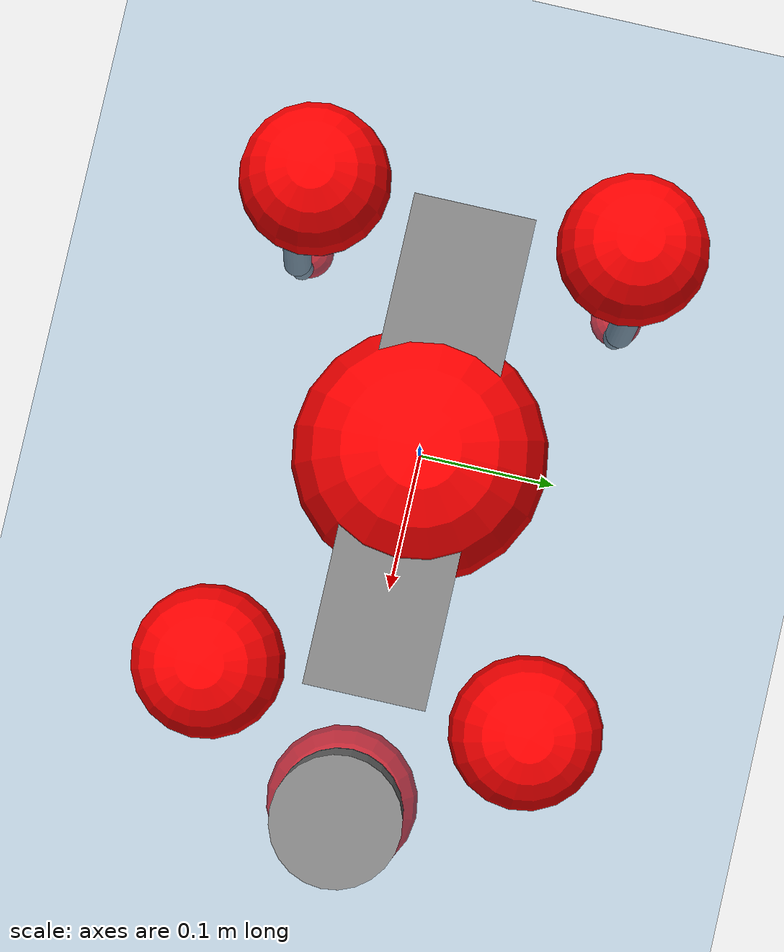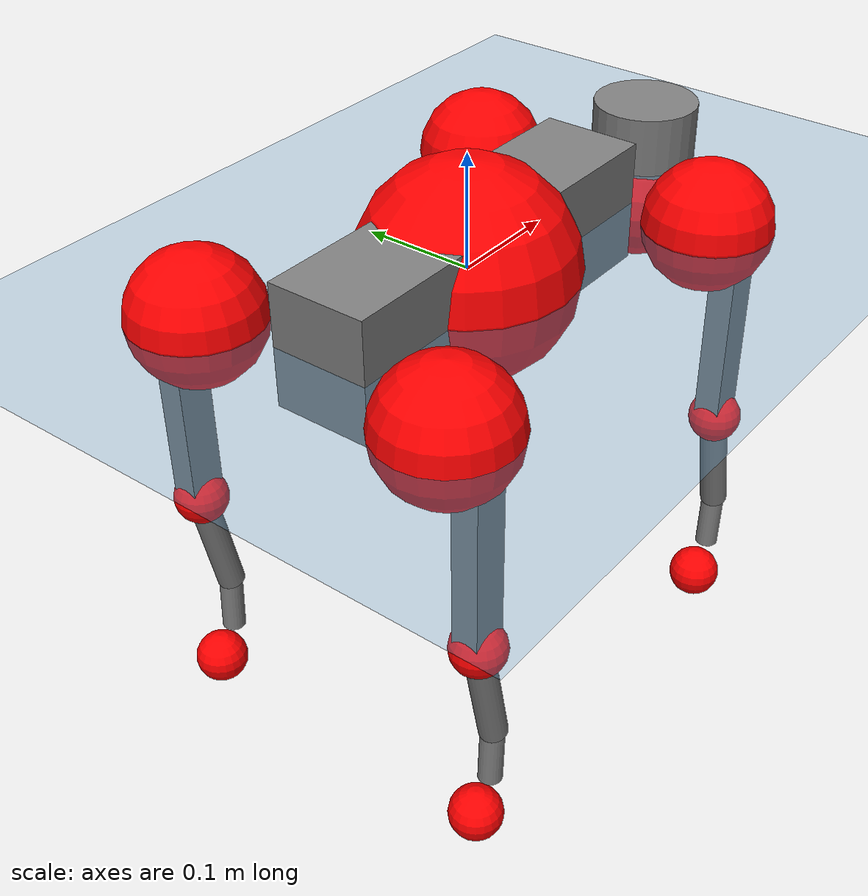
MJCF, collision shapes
<mujoco model="go2">
  <compiler angle="radian" assetdir="assets" balanceinertia="true" inertiafromgeom="false"/>

  <option timestep="0.005" density="1.2" viscosity="2e-05"/>

  <size nkey="1"/>

  <visual>
    <quality shadowsize="8192"/>
    <map shadowclip="0.5"/>
  </visual>

  <default>
    <default class="/">
      <geom contype="0" conaffinity="0" group="1" solref="-1000 -80"/>
      <site size="0.01 0.005 0.005" group="5"/>
      <general forcelimited="true" biastype="affine" gainprm="20" biasprm="0 -20 -0.5"/>
      <default class="go2">
        <joint armature="0.01" damping="0.01" frictionloss="0.2"/>
        <geom condim="1" margin="0.001"/>
        <default class="visual">
          <geom type="mesh" group="2"/>
        </default>
        <default class="collision">
          <geom group="3"/>
          <default class="foot">
            <geom size="0.022 0 0" condim="6" priority="1" friction="0.8 0.02 0.01" solimp="0.015 1 0.022"/>
          </default>
        </default>
        <default class="reward_collision_sphere">
          <geom group="5" rgba="1 0 0 1"/>
        </default>
      </default>
    </default>
  </default>

  <asset>
    <texture type="skybox" colorspace="auto" name="//unnamed_texture_0" builtin="gradient" rgb1="0.95 0.95 0.95" rgb2="0.95 0.95 0.95" width="100" height="600"/>
    <texture type="2d" colorspace="auto" name="texplane" builtin="checker" rgb1="0.345 0.575 0.748" rgb2="0.345 0.575 0.748" markrgb="1 1 1" width="512" height="512"/>
    <material name="MatPlane" class="/" texture="texplane" texuniform="true" texrepeat="2 2" specular="0.9"/>
    <material name="metal" class="/" rgba="0.9 0.95 0.95 1"/>
    <material name="black" class="/" rgba="0 0 0 1"/>
    <material name="white" class="/"/>
    <material name="gray" class="/" rgba="0.671705 0.692426 0.77427 1"/>
    <mesh name="base_0" class="/" file="base_0.obj"/>
    <mesh name="base_1" class="/" file="base_1.obj"/>
    <mesh name="base_2" class="/" file="base_2.obj"/>
    <mesh name="base_3" class="/" file="base_3.obj"/>
    <mesh name="base_4" class="/" file="base_4.obj"/>
    <mesh name="hip_0" class="/" file="hip_0.obj"/>
    <mesh name="hip_1" class="/" file="hip_1.obj"/>
    <mesh name="thigh_0" class="/" file="thigh_0.obj"/>
    <mesh name="thigh_1" class="/" file="thigh_1.obj"/>
    <mesh name="thigh_mirror_0" class="/" file="thigh_mirror_0.obj"/>
    <mesh name="thigh_mirror_1" class="/" file="thigh_mirror_1.obj"/>
    <mesh name="calf_0" class="/" file="calf_0.obj"/>
    <mesh name="calf_1" class="/" file="calf_1.obj"/>
    <mesh name="calf_mirror_0" class="/" file="calf_mirror_0.obj"/>
    <mesh name="calf_mirror_1" class="/" file="calf_mirror_1.obj"/>
    <mesh name="foot" class="/" file="foot.obj"/>
  </asset>

  <worldbody>
    <geom name="floor" class="/" size="100 100 0.125" type="plane" group="0" material="MatPlane"/>
    <light name="toplight_shadow" class="/" pos="0 0 5" dir="0.0990148 0.0990148 -0.990148" type="directional" ambient="0.04 0.04 0.04" diffuse="0.55 0.55 0.55" specular="0.12 0.12 0.12"/>
    <light name="toplight_fill" class="/" pos="0 0 5" dir="0.0990148 0.0990148 -0.990148" type="directional" castshadow="false" ambient="0.04 0.04 0.04" diffuse="0.3 0.3 0.3" specular="0.08 0.08 0.08"/>
    <body name="trunk" childclass="go2" pos="-9.41017e-05 -4.99401e-05 0.000374651" quat="1 -0.00014332 5.33073e-05 -5.14513e-05">
      <inertial pos="0.0196417 0.00100848 -0.00466367" quat="-0.000481163 0.713398 -0.00181147 0.700757" mass="5.92276" diaginertia="0.078712 0.108933 0.0129046"/>
      <joint name="//unnamed_joint_0" type="free" armature="0" damping="0" frictionloss="0"/>
      <geom name="//unnamed_geom_1" class="visual" material="black" mesh="base_0"/>
      <geom name="//unnamed_geom_2" class="visual" material="black" mesh="base_1"/>
      <geom name="//unnamed_geom_3" class="visual" material="black" mesh="base_2"/>
      <geom name="//unnamed_geom_4" class="visual" material="white" mesh="base_3"/>
      <geom name="//unnamed_geom_5" class="visual" material="gray" mesh="base_4"/>
      <geom name="trunk_1" class="collision" size="0.177594 0.0441389 0.0538165" type="box"/>
      <geom name="trunk_2" class="collision" size="0.0472074 0.0424867" pos="0.266963 0 0.00877241" type="cylinder"/>
      <geom name="trunk_3" class="collision" size="0.044375" pos="0.274457 0 -0.0526345"/>
      <geom name="//unnamed_geom_9" class="reward_collision_sphere" size="0.0944149"/>
      <geom name="//unnamed_geom_10" class="reward_collision_sphere" size="0.0566489" pos="0.262279 0 -0.0394758"/>
      <site name="imu" pos="-0.0269194 0.00466359 0.0334779" size="0.00944149"/>
      <camera name="track" pos="0 -2.03698 0" quat="0.707107 0.707107 0 0" mode="trackcom"/>
      <camera name="ego_camera" pos="0.292254 0 0.0394758" quat="-0.5 -0.5 0.5 0.5"/>
      <body name="FL_hip" pos="0.180212 0.0483005 0.000857574" quat="1 7.27988e-07 -7.00627e-07 -7.94618e-08">
        <inertial pos="-0.00548487 0.00242056 0.000794059" quat="0.494883 0.499178 0.506632 0.499235" mass="0.572828" diaginertia="0.000639896 0.000663155 0.000247369"/>
        <joint name="FL_hip_joint" pos="0 0 0" axis="0.99999 -0.0011212 0.00421777" stiffness="0.000298447" range="-1.03147 1.05088" armature="0.00906939" damping="0.00173161" frictionloss="0.18561"/>
        <geom name="//unnamed_geom_11" class="visual" material="metal" mesh="hip_0"/>
        <geom name="//unnamed_geom_12" class="visual" material="gray" mesh="hip_1"/>
        <geom name="//unnamed_geom_13" class="collision" size="0.0434308 0.018883" pos="0 0.0814794 0" quat="0.707107 0.707107 0 0" type="cylinder"/>
        <geom name="//unnamed_geom_14" class="reward_collision_sphere" size="0.0566489" pos="0 0.0712945 0"/>
        <body name="FL_thigh" pos="-0.000245002 0.0969566 0.00163991" quat="1 1.55179e-05 7.47637e-07 -1.06442e-06">
          <inertial pos="-0.00331789 -0.0226791 -0.0276512" quat="0.828953 0.085233 -0.0211245 0.552383" mass="0.960877" diaginertia="0.0043099 0.00634298 0.000443688"/>
          <joint name="FL_thigh_joint" pos="0 0 0" axis="-0.00171723 0.999998 -0.000468508" stiffness="0.00645656" range="-1.55365 3.47247" armature="0.009529" damping="0.00306491" frictionloss="0.191384"/>
          <geom name="//unnamed_geom_15" class="visual" material="metal" mesh="thigh_0"/>
          <geom name="//unnamed_geom_16" class="visual" material="gray" mesh="thigh_1"/>
          <geom name="//unnamed_geom_17" class="collision" size="0.100552 0.0115658 0.0160505" pos="0 0 -0.0934262" quat="0.707107 0 0.707107 0" type="box"/>
          <body name="FL_calf" pos="4.23432e-05 -0.0011786 -0.186762" quat="1 0.000306016 -0.000247447 0.000362088">
            <inertial pos="0.00597547 -0.000523017 -0.123502" quat="0.710362 0.0016479 -0.00438001 0.703821" mass="0.205363" diaginertia="0.00107613 0.00158846 2.76628e-05"/>
            <joint name="FL_calf_joint" pos="0 0 0" axis="-0.000690579 0.999983 -0.00573386" stiffness="0.00115244" range="-2.71595 -0.846718" armature="0.00974418" damping="0.000517472" frictionloss="0.192374"/>
            <geom name="//unnamed_geom_18" class="visual" material="gray" mesh="calf_0"/>
            <geom name="//unnamed_geom_19" class="visual" material="black" mesh="calf_1"/>
            <geom name="FL_calf0" class="collision" size="0.0113298 0.0566489" pos="0.0074937 0 -0.0526345" quat="0.994493 0 -0.104807 0" type="cylinder"/>
            <geom name="//unnamed_geom_21" class="collision" size="0.0103856 0.0306848" pos="0.0187342 0 -0.129832" quat="0.999688 0 0.0249974 0" type="cylinder"/>
            <geom name="//unnamed_geom_22" class="visual" pos="0 0 -0.186852" quat="1 0 0 0" material="black" mesh="foot"/>
            <geom name="FL_foot" class="foot" size="0.0178919" pos="-0.00187342 0 -0.186852"/>
            <geom name="//unnamed_geom_24" class="reward_collision_sphere" size="0.0236037"/>
            <geom name="//unnamed_geom_25" class="reward_collision_sphere" size="0.0236037" pos="-0.00187342 0 -0.186852"/>
            <site name="FL_foot" class="foot" pos="-0.00187342 0 -0.186852" size="0.00944149"/>
          </body>
        </body>
      </body>
      <body name="FR_hip" pos="0.180619 -0.045807 0.000266124" quat="1 -3.37466e-06 -2.77351e-05 -2.09918e-05">
        <inertial pos="-0.00480783 -0.00182335 -0.000769464" quat="0.498792 0.505895 0.498418 0.496846" mass="0.562456" diaginertia="0.000631222 0.000654455 0.000249485"/>
        <joint name="FR_hip_joint" pos="0 0 0" axis="0.999999 0.000705081 0.000904078" range="-1.04871 1.02775" armature="0.00947783" damping="0.0110232" frictionloss="0.195546"/>
        <geom name="//unnamed_geom_26" class="visual" pos="0 1.23052e-09 5.27797e-08" quat="4.63268e-05 1 0 0" material="metal" mesh="hip_0"/>
        <geom name="//unnamed_geom_27" class="visual" pos="0 1.99483e-09 -1.30544e-07" quat="4.63268e-05 1 0 0" material="gray" mesh="hip_1"/>
        <geom name="//unnamed_geom_28" class="collision" size="0.0434308 0.018883" pos="0 -0.0814794 0" quat="0.707107 0.707107 0 0" type="cylinder"/>
        <geom name="//unnamed_geom_29" class="reward_collision_sphere" size="0.0566489" pos="0 -0.0712945 0"/>
        <body name="FR_thigh" pos="0.00194354 -0.0972281 -7.27254e-05" quat="1 -4.77874e-05 0.000342264 -8.27357e-05">
          <inertial pos="-0.00350242 0.0223003 -0.0285893" quat="0.551531 -0.0208386 0.0852923 0.82952" mass="1.00154" diaginertia="0.00432253 0.00660802 0.000468295"/>
          <joint name="FR_thigh_joint" pos="0 0 0" axis="-0.00726532 -0.999973 0.000486232" range="-3.45698 1.54795" armature="0.00935458" damping="0.00853745" frictionloss="0.187171"/>
          <geom name="//unnamed_geom_30" class="visual" material="metal" mesh="thigh_mirror_0"/>
          <geom name="//unnamed_geom_31" class="visual" material="gray" mesh="thigh_mirror_1"/>
          <geom name="//unnamed_geom_32" class="collision" size="0.100552 0.0115658 0.0160505" pos="0 0 -0.0934262" quat="0.707107 0 0.707107 0" type="box"/>
          <body name="FR_calf" pos="0.000869465 -0.000911382 -0.18756" quat="1 0.000100175 0.000135111 -7.0096e-05">
            <inertial pos="0.00649273 0.000501763 -0.122911" quat="0.703325 -0.00478061 0.00271753 0.710847" mass="0.198891" diaginertia="0.00106512 0.00161272 2.77515e-05"/>
            <joint name="FR_calf_joint" pos="0 0 0" axis="0.00960704 -0.999954 1.86379e-05" stiffness="0.000244746" range="0.832097 2.71474" armature="0.00944725" damping="0.0106659" frictionloss="0.172746"/>
            <geom name="//unnamed_geom_33" class="visual" material="gray" mesh="calf_mirror_0"/>
            <geom name="//unnamed_geom_34" class="visual" material="black" mesh="calf_mirror_1"/>
            <geom name="FR_calf0" class="collision" size="0.0122739 0.0566489" pos="0.00936712 0 -0.0526345" quat="0.995004 0 -0.0998334 0" type="cylinder"/>
            <geom name="//unnamed_geom_36" class="collision" size="0.0103856 0.0306848" pos="0.0187342 0 -0.129832" quat="0.999688 0 0.0249974 0" type="cylinder"/>
            <geom name="//unnamed_geom_37" class="visual" pos="0 0 -0.186852" quat="1 0 0 0" material="black" mesh="foot"/>
            <geom name="FR_foot" class="foot" size="0.0218049" pos="-0.00187342 0 -0.186852"/>
            <geom name="//unnamed_geom_39" class="reward_collision_sphere" size="0.0236037"/>
            <geom name="//unnamed_geom_40" class="reward_collision_sphere" size="0.0236037" pos="-0.00187342 0 -0.186852"/>
            <site name="FR_foot" class="foot" pos="-0.00187342 0 -0.186852" size="0.00944149"/>
          </body>
        </body>
      </body>
      <body name="RL_hip" pos="-0.181587 0.047932 5.14455e-05" quat="1 1.33261e-05 0.000126109 -0.000114222">
        <inertial pos="0.00596572 0.0019773 0.000410252" quat="0.509272 0.493969 0.491891 0.504658" mass="0.557519" diaginertia="0.000632727 0.000647638 0.000252126"/>
        <joint name="RL_hip_joint" pos="0 0 0" axis="-0.999897 -0.0123982 -0.00719223" range="-1.04361 1.06484" armature="0.00938018" damping="0.0147926" frictionloss="0.179656"/>
        <geom name="//unnamed_geom_41" class="visual" pos="-5.18091e-10 0 -1.01558e-07" quat="4.63268e-05 0 1 0" material="metal" mesh="hip_0"/>
        <geom name="//unnamed_geom_42" class="visual" pos="-8.39888e-10 0 -9.00673e-08" quat="4.63268e-05 0 1 0" material="gray" mesh="hip_1"/>
        <geom name="//unnamed_geom_43" class="collision" size="0.0434308 0.018883" pos="0 0.0814794 0" quat="0.707107 0.707107 0 0" type="cylinder"/>
        <geom name="//unnamed_geom_44" class="reward_collision_sphere" size="0.0566489" pos="0 0.0712945 0"/>
        <body name="RL_thigh" pos="3.12749e-05 0.096863 -0.000424016" quat="1 -0.000261185 -0.000161675 -0.000369371">
          <inertial pos="-0.00284273 -0.0220429 -0.0286866" quat="0.830202 0.0830192 -0.0166571 0.550995" mass="0.980283" diaginertia="0.00432284 0.00656339 0.000457071"/>
          <joint name="RL_thigh_joint" pos="0 0 0" axis="-0.0010939 0.999995 -0.00282163" range="-0.52543 4.53392" armature="0.00940139" damping="0.00987725" frictionloss="0.189414"/>
          <geom name="//unnamed_geom_45" class="visual" material="metal" mesh="thigh_0"/>
          <geom name="//unnamed_geom_46" class="visual" material="gray" mesh="thigh_1"/>
          <geom name="//unnamed_geom_47" class="collision" size="0.100552 0.0115658 0.0160505" pos="0 0 -0.0934262" quat="0.707107 0 0.707107 0" type="box"/>
          <body name="RL_calf" pos="0.000544687 -0.000479134 -0.18736" quat="1 2.71602e-05 0.000174724 0.00012099">
            <inertial pos="0.0058416 -0.000116985 -0.123551" quat="0.710709 0.00140219 -0.00442527 0.703471" mass="0.206037" diaginertia="0.0011053 0.00166081 2.89138e-05"/>
            <joint name="RL_calf_joint" pos="0 0 0" axis="0.0105763 0.999942 0.002057" range="-2.72253 -0.875188" armature="0.00941259" damping="0" frictionloss="0.17981"/>
            <geom name="//unnamed_geom_48" class="visual" material="gray" mesh="calf_0"/>
            <geom name="//unnamed_geom_49" class="visual" material="black" mesh="calf_1"/>
            <geom name="RL_calf0" class="collision" size="0.0122739 0.0566489" pos="0.00936712 0 -0.0526345" quat="0.995004 0 -0.0998334 0" type="cylinder"/>
            <geom name="//unnamed_geom_51" class="collision" size="0.0103856 0.0306848" pos="0.0187342 0 -0.129832" quat="0.999688 0 0.0249974 0" type="cylinder"/>
            <geom name="//unnamed_geom_52" class="visual" pos="0 0 -0.186852" quat="1 0 0 0" material="black" mesh="foot"/>
            <geom name="RL_foot" class="foot" size="0.0170419" pos="-0.00187342 0 -0.186852"/>
            <geom name="//unnamed_geom_54" class="reward_collision_sphere" size="0.0236037"/>
            <geom name="//unnamed_geom_55" class="reward_collision_sphere" size="0.0236037" pos="-0.00187342 0 -0.186852"/>
            <site name="RL_foot" class="foot" pos="-0.00187342 0 -0.186852" size="0.00944149"/>
          </body>
        </body>
      </body>
      <body name="RR_hip" pos="-0.181087 -0.0489171 -0.00163887" quat="1 3.54656e-05 0.000189225 -0.000388415">
        <inertial pos="0.00530826 -0.0029371 0.000797859" quat="0.501793 0.498243 0.501658 0.498294" mass="0.575897" diaginertia="0.00063653 0.000666401 0.000251177"/>
        <joint name="RR_hip_joint" pos="0 0 0" axis="-0.999979 -0.00631947 -0.00106273" stiffness="0.00191402" range="-1.05584 1.05302" armature="0.00910592" damping="0.0117183" frictionloss="0.181686"/>
        <geom name="//unnamed_geom_56" class="visual" pos="5.20922e-10 1.23052e-09 -1.54338e-07" quat="2.14617e-09 4.63268e-05 4.63268e-05 -1" material="metal" mesh="hip_0"/>
        <geom name="//unnamed_geom_57" class="visual" pos="8.32885e-10 1.99483e-09 4.04771e-08" quat="2.14617e-09 4.63268e-05 4.63268e-05 -1" material="gray" mesh="hip_1"/>
        <geom name="//unnamed_geom_58" class="collision" size="0.0434308 0.018883" pos="0 -0.0814794 0" quat="0.707107 0.707107 0 0" type="cylinder"/>
        <geom name="//unnamed_geom_59" class="reward_collision_sphere" size="0.0566489" pos="0 -0.0712945 0"/>
        <body name="RR_thigh" pos="6.32699e-05 -0.0977809 -0.00291012" quat="1 -3.72421e-05 -0.000188706 -0.000142555">
          <inertial pos="-0.00341777 0.0245692 -0.0296748" quat="0.551611 -0.0199992 0.0845124 0.829568" mass="0.949147" diaginertia="0.00420479 0.00627988 0.000445057"/>
          <joint name="RR_thigh_joint" pos="0 0 0" axis="-0.00232892 -0.999959 -0.00876552" range="-4.55567 0.503074" armature="0.0103235" damping="0.0172629" frictionloss="0.185191"/>
          <geom name="//unnamed_geom_60" class="visual" material="metal" mesh="thigh_mirror_0"/>
          <geom name="//unnamed_geom_61" class="visual" material="gray" mesh="thigh_mirror_1"/>
          <geom name="//unnamed_geom_62" class="collision" size="0.100552 0.0115658 0.0160505" pos="0 0 -0.0934262" quat="0.707107 0 0.707107 0" type="box"/>
          <body name="RR_calf" pos="0.000471874 -0.000876794 -0.187093" quat="1 -1.53416e-06 -9.26615e-06 -2.47807e-06">
            <inertial pos="0.00470952 0.000986496 -0.124357" quat="0.70204 0.00193211 0.00228219 0.712131" mass="0.203303" diaginertia="0.00109358 0.00163056 2.85662e-05"/>
            <joint name="RR_calf_joint" pos="0 0 0" axis="-0.000684161 -1 -0.000217007" stiffness="0.00229384" range="0.841697 2.7412" armature="0.00955212" damping="0.00995888" frictionloss="0.19377"/>
            <geom name="//unnamed_geom_63" class="visual" material="gray" mesh="calf_mirror_0"/>
            <geom name="//unnamed_geom_64" class="visual" material="black" mesh="calf_mirror_1"/>
            <geom name="RR_calf0" class="collision" size="0.0122739 0.0566489" pos="0.00936712 0 -0.0526345" quat="0.995004 0 -0.0998334 0" type="cylinder"/>
            <geom name="//unnamed_geom_66" class="collision" size="0.0103856 0.0306848" pos="0.0187342 0 -0.129832" quat="0.999688 0 0.0249974 0" type="cylinder"/>
            <geom name="//unnamed_geom_67" class="visual" pos="0 0 -0.186852" quat="1 0 0 0" material="black" mesh="foot"/>
            <geom name="RR_foot" class="foot" size="0.0210105" pos="-0.00187342 0 -0.186852"/>
            <geom name="//unnamed_geom_69" class="reward_collision_sphere" size="0.0236037"/>
            <geom name="//unnamed_geom_70" class="reward_collision_sphere" size="0.0236037" pos="-0.00187342 0 -0.186852"/>
            <site name="RR_foot" class="foot" pos="-0.00187342 0 -0.186852" size="0.00944149"/>
          </body>
        </body>
      </body>
    </body>
  </worldbody>

  <contact>
    <pair class="/" geom1="floor" geom2="FL_foot" name="//unnamed_contact_0"/>
    <pair class="/" geom1="floor" geom2="FR_foot" name="//unnamed_contact_1"/>
    <pair class="/" geom1="floor" geom2="RL_foot" name="//unnamed_contact_2"/>
    <pair class="/" geom1="floor" geom2="RR_foot" name="//unnamed_contact_3"/>
  </contact>

  <actuator>
    <general name="FL_hip" class="/" joint="FL_hip_joint" forcerange="-23.0746 23.0746" gainprm="19.5484" biasprm="0 -19.5484 -0.462812"/>
    <general name="FL_thigh" class="/" joint="FL_thigh_joint" forcerange="-21.0131 21.0131" gainprm="19.5484" biasprm="0 -19.5484 -0.462812"/>
    <general name="FL_calf" class="/" joint="FL_calf_joint" forcerange="-42.5121 42.5121" gainprm="19.5484" biasprm="0 -19.5484 -0.462812"/>
    <general name="FR_hip" class="/" joint="FR_hip_joint" forcerange="-22.5199 22.5199" gainprm="19.5484" biasprm="0 -19.5484 -0.462812"/>
    <general name="FR_thigh" class="/" joint="FR_thigh_joint" forcerange="-21.7261 21.7261" gainprm="19.5484" biasprm="0 -19.5484 -0.462812"/>
    <general name="FR_calf" class="/" joint="FR_calf_joint" forcerange="-44.1155 44.1155" gainprm="19.5484" biasprm="0 -19.5484 -0.462812"/>
    <general name="RL_hip" class="/" joint="RL_hip_joint" forcerange="-21.8963 21.8963" gainprm="19.5484" biasprm="0 -19.5484 -0.462812"/>
    <general name="RL_thigh" class="/" joint="RL_thigh_joint" forcerange="-22.4063 22.4063" gainprm="19.5484" biasprm="0 -19.5484 -0.462812"/>
    <general name="RL_calf" class="/" joint="RL_calf_joint" forcerange="-44.4283 44.4283" gainprm="19.5484" biasprm="0 -19.5484 -0.462812"/>
    <general name="RR_hip" class="/" joint="RR_hip_joint" forcerange="-21.037 21.037" gainprm="19.5484" biasprm="0 -19.5484 -0.462812"/>
    <general name="RR_thigh" class="/" joint="RR_thigh_joint" forcerange="-21.9768 21.9768" gainprm="19.5484" biasprm="0 -19.5484 -0.462812"/>
    <general name="RR_calf" class="/" joint="RR_calf_joint" forcerange="-42.2275 42.2275" gainprm="19.5484" biasprm="0 -19.5484 -0.462812"/>
  </actuator>

  <sensor>
    <gyro site="imu" name="imu_angular_velocity"/>
    <velocimeter site="imu" name="imu_linear_velocity"/>
    <framelinvel objtype="site" objname="FL_foot" name="FL_foot_global_linear_velocity"/>
    <framelinvel objtype="site" objname="FR_foot" name="FR_foot_global_linear_velocity"/>
    <framelinvel objtype="site" objname="RL_foot" name="RL_foot_global_linear_velocity"/>
    <framelinvel objtype="site" objname="RR_foot" name="RR_foot_global_linear_velocity"/>
  </sensor>

  <keyframe>
    <key name="home" qpos="0 0 0.325 1 0 0 0 0.1 0.8 -1.5 -0.1 -0.8 1.5 -0.1 0.8 -1.5 0.1 -0.8 1.5"/>
  </keyframe>
</mujoco>
